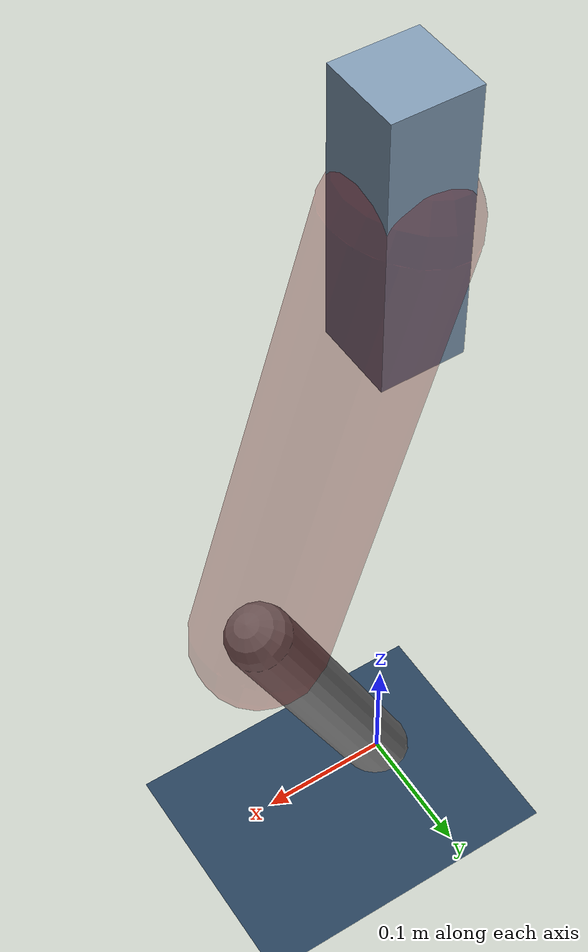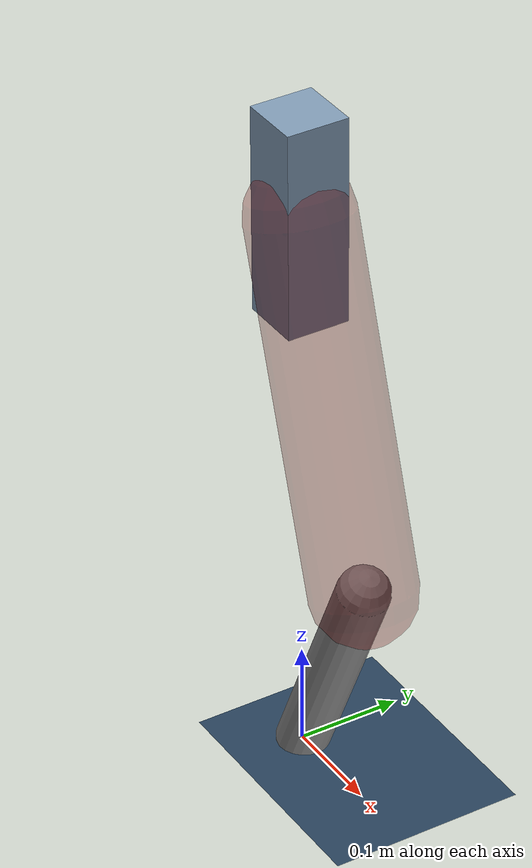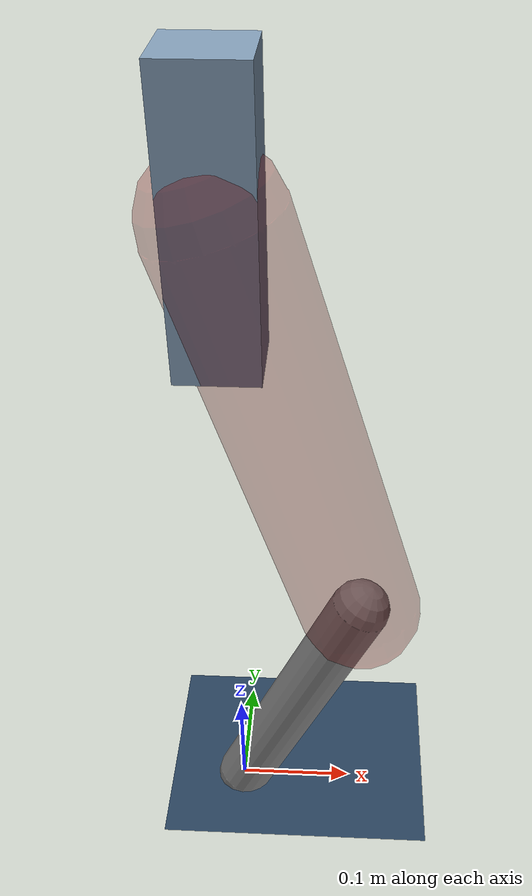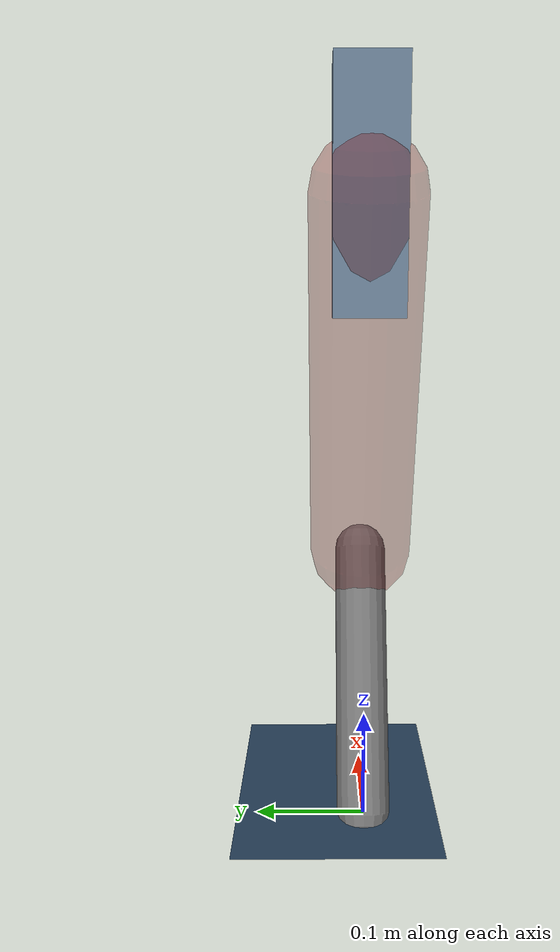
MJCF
<mujoco model="Hopper2D">
	<compiler inertiafromgeom="true" angle="radian" />
	<option timestep="0.001" integrator="implicit" cone="elliptic" solver="Newton" tolerance="1e-10" />

	<default>
		<geom contype="1" conaffinity="1" condim="3" friction="2 0.005 0.0001" solref="0.005 1" />
		<joint limited="true" damping="0.1" />
	</default>

	<asset>
		<texture name="skybox" type="skybox" builtin="gradient" rgb1=".4 .6 .8" rgb2="0 0 0" width="800" height="800" />
		<texture name="grid" type="2d" builtin="checker" rgb1=".1 .2 .3" rgb2=".2 .3 .4" width="300" height="300" mark="edge" markrgb=".2 .3 .4" />
		<material name="ground" texture="grid" texrepeat="1 1" texuniform="true" reflectance="0.1" />
		<material name="leg" rgba="0.5 0.6 0.7 1" />
	</asset>

	<worldbody>

		<geom name="floor" type="plane" size="5 5 0.25" material="ground" />

		<light directional="false" diffuse="0.8 0.8 0.8" specular="0.3 0.3 0.3" pos="0 0 2" dir="0 0 -1" />
		<light mode="targetbodycom" target="base" directional="false" diffuse="0.8 0.8 0.8" specular="0.3 0.3 0.3" pos="0 0 2" dir="0 0 -1" />

		<camera name="fixed" pos="0 -2 1" xyaxes="1 0 0 0 0 1" />
		<camera name="tracking" mode="trackcom" pos="0 -3 1" />

		<body name="root" pos="0 0 0.5597776611189331">
			<joint name="slide_x" type="slide" axis="1 0 0" range="-100 100" />
			<joint name="slide_z" type="slide" axis="0 0 1" range="0 10" />

			<body name="base" pos="0 0 0">
				<geom name="torso" type="box" size="0.03 0.03 0.1" mass="3.0010000000000003" material="leg" />

				<body name="link1" pos="0 0 0" euler="0 1.267574478631536 0">
					<joint type="hinge" axis="0 -1 0" pos="0 0 0" name="hinge1" limited="true" range="-3.14 3.14" stiffness="0" damping="0.1" />
					<geom name="thigh" type="capsule" fromto="0 0 0 0.34645006965033115 0 0" size="0.05" rgba="0.5 0 0 0.3" mass="1.1167052019859605" />

					<body name="link2" pos="0.34645006965033115 0 0" euler="0 0.72730557372975 0">
						<joint type="hinge" axis="0 -1 0" pos="0 0 0" name="hinge2" limited="true" range="-3.14 3.14" stiffness="0" damping="0.1" />
						<geom name="shank" type="capsule" fromto="0 0 0 0.2514031024933643 0 0" size="0.025" mass="0.4436627922440279" />

					</body>
				</body>
			</body>
		</body>
	</worldbody>

	<actuator>
		<motor name="torque1" joint="hinge1" ctrlrange="-73.95481585607703 73.95481585607703" ctrllimited="true" gear="1" />
		<motor name="torque2" joint="hinge2" ctrlrange="-133.1332661312199 133.1332661312199" ctrllimited="true" gear="1" />
	</actuator>
</mujoco>
